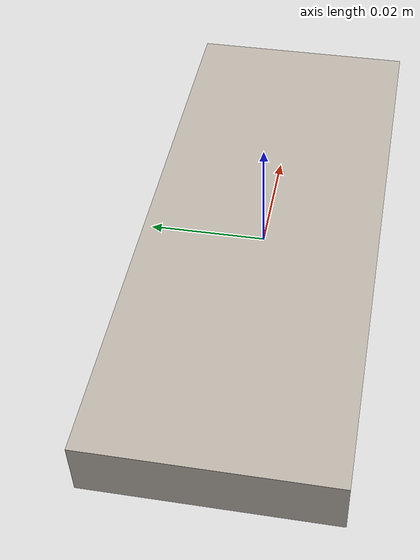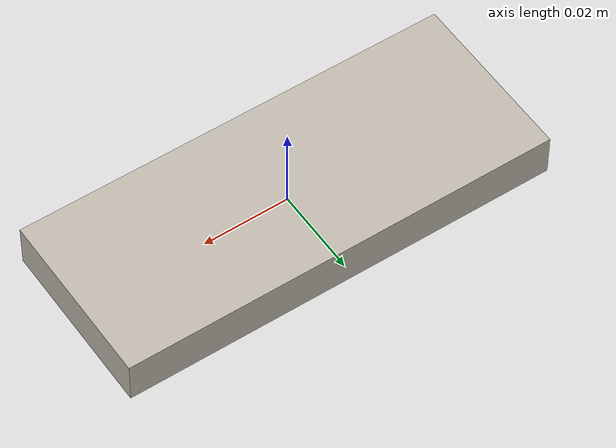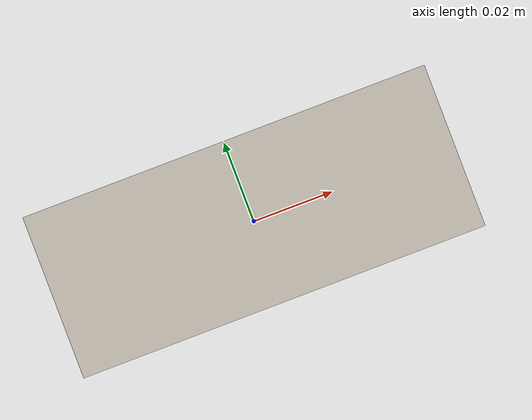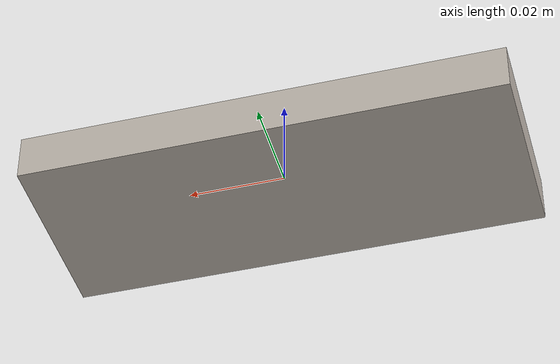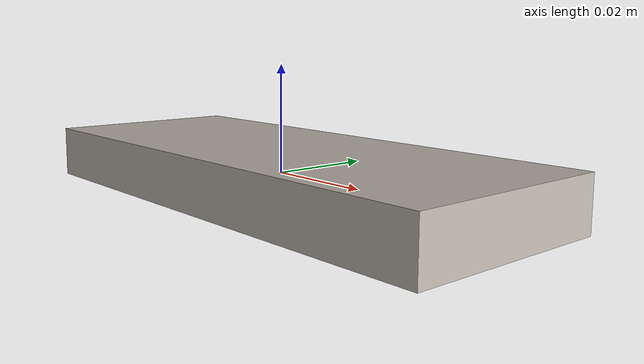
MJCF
<mujoco model="iPhone">
  <asset>
    <mesh file="meshes/iPhone.stl" name="iPhone_mesh"/>
    <texture file="../textures/metal.png" name="tex-iPhone"/>
    <material name="iPhone_back" reflectance="0.7" texrepeat="10 10" texture="tex-iPhone" texuniform="true"/>
  </asset>
  <worldbody>
    <body>
      <body name="object">
        <geom pos="0 0 0" type="box" size="0.05 0.02 0.005" solimp="0.998 0.998 0.001" solref="0.001 1" density="100" friction="0.95 0.3 0.1" material="iPhone_back" group="0" condim="3"/>
      </body>
      <site rgba="0 0 0 0" size="0.005" pos="0 0 -0.06" name="bottom_site"/>
      <site rgba="0 0 0 0" size="0.005" pos="0 0 0.04" name="top_site"/>
      <site rgba="0 0 0 0" size="0.005" pos="0.025 0.025 0" name="horizontal_radius_site"/>
    </body>
  </worldbody>
</mujoco>
